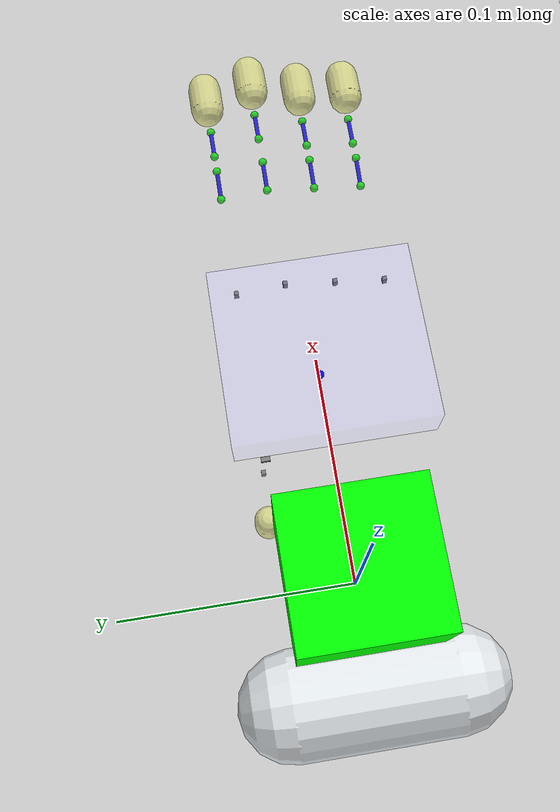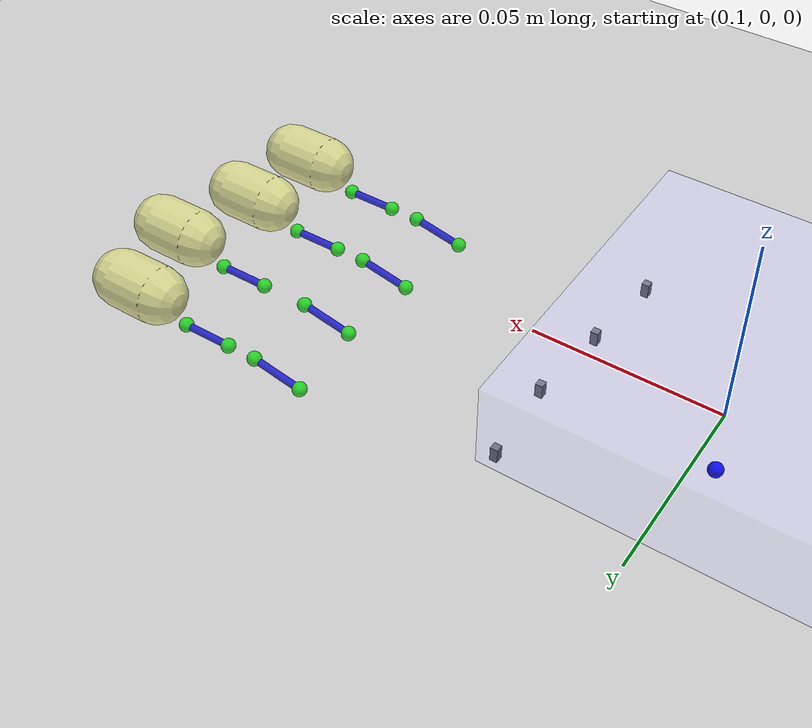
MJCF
<?xml version='1.0' encoding='UTF-8'?>
<mujoco model="ParaHand_only">
    <compiler angle="radian"/>
    <option integrator="implicitfast" gravity="0 0 -9.81"/>
    <default>
        <geom condim="4" friction="1.0 0.01 0.001" solref="0.01 1.0" solimp="0.9 0.95 0.001 0.5 2.0" contype="1" conaffinity="1"/>
        <default class="hand">
            <geom type="mesh" density="1250" rgba="0 0 1 0"/>
        </default>
        <default class="visual">
            <geom contype="0" conaffinity="0" group="2" density="1"/>
        </default>
        <default class="tip">
            <geom zaxis="1 0 0" type="capsule" size="0.008 0.006" pos="0.022 0 0" rgba="1 1 .6 1" density="1000"/>
        </default>
        <default class="tac">
            <geom zaxis="1 0 0" type="capsule" size="0.006 0.003" pos="0.026 0.006 0" rgba="0 1 0 0.3" density="1000" friction="1 0.2 0.01"/>
        </default>
        <default class="collision">
            <geom density="1250" rgba="0.7 0.3 0.3 0.5"/>
            <default class="link_1_collision">
                <geom type="box" pos="0.019235 0.00017 0" size="0.013545 0.00875 0.00599"/>
            </default>
            <default class="link_2_collision">
                <geom type="box" pos="-0.0125 0 0" size="0.00341 0.0075 0.0065"/>
            </default>
            <default class="link_3_collision">
                <geom type="box" pos="0.01113 0 0" size="0.003805 0.0075 0.0065"/>
            </default>
        </default>
        <default class="palm_collision">
            <geom density="1500" rgba="0.3 0.3 0.7 0.2"/>
        </default>
        <default class="tendon">
            <tendon width="0.001" rgba="0 0 1 1"/>
            <position ctrllimited="true" forcelimited="true" forcerange="-400 0" ctrlrange="0.0037 0.0285" kp="200"/>
        </default>
        <default class="tendon_site">
            <site size="0.002" rgba="0 1 0 1"/>
        </default>
        <default class="thumb_joint">
            <joint type="hinge" range="0 1.57" limited="true" solreflimit=".001 1" solimplimit="0.97 0.99 0.00001 0.1 2" damping="1"/>
            <position ctrllimited="true" inheritrange="1" kp="10"/>
        </default>
        <default class="swing_joint">
            <joint type="hinge" solreflimit=".001 1" solimplimit="0.97 0.99 0.00001 0.1 2" damping="1" range="-0.26 0.26"/>
            <position ctrllimited="true" inheritrange="1" kp="10"/>
        </default>
        <default class="finger_joint">
            <joint type="hinge" range="0 1.57" limited="true" solreflimit=".001 1" solimplimit="0.97 0.99 0.00001 0.1 2" damping="1"/>
            <position ctrllimited="true" inheritrange="1" kp="10"/>
        </default>
        <default class="passive_finger_joint">
            <joint type="hinge" range="0 1.57" limited="true" solreflimit=".001 1" solimplimit="0.97 0.99 0.00001 0.1 2" damping="0.001" stiffness="0.005"/>
        </default>
        <default class="touch_sensor">
            <site rgba="1 0 0 0.3" zaxis="1 0 0" size="0.006" pos="0.029 0.006 0"/>
        </default>
        <default class="palm_translation">
            <joint type="slide" solreflimit=".001 1" solimplimit="0.97 0.99 0.00001 0.1 2" damping="1"/>
            <position ctrllimited="true" inheritrange="1" kp="600" kv="40" forcerange="-200 200"/>
        </default>
        <default class="palm_rotation">
            <joint type="hinge" solreflimit=".001 1" solimplimit="0.97 0.99 0.00001 0.1 2" damping="1" limited="true" range="-1.57 1.57"/>
            <position ctrllimited="true" inheritrange="1" kp="60" kv="4" forcerange="-80 80"/>
        </default>
        <default class="cube">
            <geom friction="1.0 0.002 0.002" contype="2097152" conaffinity="2097151" condim="4" />
        </default>
    </default>
    <asset>
        <texture type="2d" name="groundplane" builtin="checker" mark="edge" rgb1="1 1 1" rgb2="0 0 0" markrgb="0 0 0" width="300" height="300"/>
        <material name="groundplane" texture="groundplane" texuniform="true" texrepeat="5 5" reflectance="0"/>
    </asset>
    <keyframe>
		<key name="home"
			qpos="-0.2 0 0.35 0 0 0
				0 0 -0.5 0.63
				0 0.36 0.48 0.32
				0 0.36 0.48 0.32
				0 0.36 0.48 0.32
				0 0.36 0.48 0.32
				0 0 0.03 1 0 0 0"
            qvel="0 0 0 0 0 0
                0 0 0 0
                0 0 0 0
                0 0 0 0
                0 0 0 0
                0 0 0 0
                0 0 0 0 0 0"
			ctrl="-0.2 0 0.35 0 0 0
				0 0 0.23 0.63
				0 0.36 0.021
				0 0.36 0.021
				0 0.36 0.021
				0 0.36 0.021" />
        <key name="follow_object"
            qpos="-0.12 -0.005 0.168 0.23 0 0
                0 0.22 0.23 0.63
                0 0.7 0.47 0.36
                0 0.7 0.47 0.36
                0 0.7 0.47 0.36
                0 0.7 0.47 0.36
                0 0 0.03 1 0 0 0"
            qvel="0 0 0 0 0 0
                0 0 0 0
                0 0 0 0
                0 0 0 0
                0 0 0 0
                0 0 0 0
                0 0 0 0 0 0"
            ctrl="-0.12 -0.005 0.168 0.23 0 0
                0 0.22 0.23 0.63
                0 0.7 0.021
                0 0.7 0.021
                0 0.7 0.021
                0 0.7 0.021"
            />
    </keyframe>
    <worldbody>
        <geom name="floor" pos="0 0 0" size="0 0 0.01" type="plane" material="groundplane" contype="1" conaffinity="2" friction="1 0.05 0.05" solref="0.001 1" solimp="0.98 0.99 0.001"/>
        <body name="palm" pos="0 0 0" euler="3.14 1.57 -1.57" childclass="hand">
            <site name="wrist_origin" size="0.002" rgba="1 0 0 1"/>
            <site name="inner_palm_5" pos="-0.00249 -0.021 0.1" size="0.002" rgba="0 0 1 1"/>
            <geom pos="0 0 -0.044" zaxis="1 0 0" rgba="0.89804 0.91765 0.92941 1" type="capsule" size="0.0225 0.0335" contype="262144" conaffinity="2097343"/>
            <geom name="palm_collision_1" type="box" pos="-0.00249 0.00075 0.1" size="0.045 0.02175 0.04" class="palm_collision" contype="262144" conaffinity="2097343"/>
            <joint name="palm_translation_x" axis="0 0 1" class="palm_translation" range="-0.5 0.5"/>
            <joint name="palm_translation_y" axis="1 0 0" class="palm_translation" range="-0.5 0.5"/>
            <joint name="palm_translation_z" axis="0 1 0" class="palm_translation" range="-0.5 1"/>
            <joint name="palm_rotation_x" axis="1 0 0" class="palm_rotation" range="-0.5 0.5"/>
            <joint name="palm_rotation_y" axis="0 1 0" class="palm_rotation"/>
            <joint name="palm_rotation_z" axis="0 0 1" class="palm_rotation" range="-2 2"/>
            <body name="thumb_mc_1" pos="0.01905 0 0.05851" euler="3.14 1.57 0">
                <joint name="thumb_cmc_1" type="hinge" axis="0 1 0" class="thumb_joint" range="0 0.785"/>
                <geom type="box" pos="0 0 0.01" size="0.001 0.001 0.002" class="visual"/>
                <body name="thumb_mc_2" pos="0 0.01489 0.011500" euler="-1.57 0 0">
                    <joint name="thumb_cmc_2" type="hinge" axis="-1 0 0" class="thumb_joint" range="-1.57 0.785"/>
                    <geom type="box" pos="0 0 0.01" size="0.001 0.001 0.002" class="visual"/>
                    <body name="thumb_pp" pos="0 0 0.022500" euler="-1.57 0 -1.57">
                        <joint name="thumb_mcp" type="hinge" axis="0 0 1" class="thumb_joint" range="-0.611 1.57"/>
                        <geom name="thumb_link_2_collision" type="box" pos="0.0225 0 0.00075" size="0.013795 0.00471 0.00485" class="collision" contype="524288" conaffinity="2343167"/>
                        <body name="thumb_dp" pos="0.04970 0 0" euler="0 0 -3.14">
                            <joint name="thumb_ip" type="hinge" axis="0 0 1" class="thumb_joint"/>
                            <geom name="thumb_link_3_collision" type="box" pos="-0.0227 0 0" size="0.014 0.005 0.006" class="collision" contype="1048576" conaffinity="2357503"/>
                            <geom name="thumb_tip" pos="-0.0442 0.003 0" class="tip" contype="1048576" conaffinity="2357503"/>
                            <site name="thumb_tip" pos="-0.0502 -0.003 0" class="touch_sensor"/>
                            <geom name="thumb_tac" pos="-0.0472 -0.003 0" class="tac" contype="1048576" conaffinity="2357503"/>
                        </body>
                    </body>
                </body>
            </body>
            <body name="index_mc" pos="0.03040 0 0.14156" euler="1.57 0 3.14">
                <joint name="index_mcp_1" axis="0 0 1." class="swing_joint" range="-0.52 0.0"/>
                <geom type="box" pos="0 0 0.01" size="0.001 0.001 0.002" class="visual"/>
                <body name="index_pp" pos="0 -0.0225000 0.014000" euler="1.57 -1.57 0">
                    <joint name="index_mcp_2" axis="0 0 1" class="finger_joint"/>
                    <site name="index_tendon_pip_1" pos="0.0345 0.008 0.0" class="tendon_site"/>
                    <geom name="index_link_1_collision" class="link_1_collision" contype="2048" conaffinity="3285181"/>
                    <body name="index_mp" pos="0.04166 -0.00102 0" euler="-3.14 0 -3.14">
                        <inertial pos="0 0 0" mass="0.005" fullinertia="1.89e-7 9.93e-7 9.81e-7 7.1e-8 0 0"/>
                        <joint name="index_pip" axis="0 0 -1" class="passive_finger_joint"/>
                        <site name="index_tendon_pip_2" pos="-0.007 0.006 0.0" class="tendon_site"/>
                        <site name="index_tendon_dip_1" pos="-0.0155 0.006 0.0" class="tendon_site"/>
                        <geom name="index_link_2_collision" class="link_2_collision" contype="2048" conaffinity="3285181"/>
                        <body name="index_dp" pos="-0.0225 0 0" euler="-3.14 0 3.14">
                            <inertial pos="0 0 0" mass="0.005" fullinertia="1.93e-7 1.736e-6 1.707e-6 -1.9e-7 0 0"/>
                            <joint name="index_dip" axis="0 0 1" class="passive_finger_joint"/>
                            <site name="index_tendon_dip_2" pos="0.007 0.006 0.0" class="tendon_site"/>
                            <geom name="index_link_3_collision" class="link_3_collision" contype="32768" conaffinity="3875005"/>
                            <geom name="index_tip" class="tip" contype="32768" conaffinity="3875005"/>
                            <site name="index_tip" class="touch_sensor"/>
                            <geom name="index_tac" class="tac" contype="32768" conaffinity="3875005"/>
                        </body>
                    </body>
                </body>
            </body>
            <body name="middle_mc" pos="0.00710 0 0.14306" euler="1.57 0 3.14">
                <joint name="middle_mcp_1" axis="0 0 1" class="swing_joint"/>
                <geom type="box" pos="0 0 0.01" size="0.001 0.001 0.002" class="visual"/>
                <body name="middle_pp" pos="0 -0.0225000 0.014000" euler="1.57 -1.57 0">
                    <joint name="middle_mcp_2" axis="0 0 1" class="finger_joint"/>
                    <site name="middle_tendon_pip_1" pos="0.0345 0.008 0.0" class="tendon_site"/>
                    <geom name="middle_link_1_collision" class="link_1_collision" contype="8192" conaffinity="3250365"/>
                    <body name="middle_mp" pos="0.04166 -0.00102 0" euler="-3.14 0 -3.14">
                        <inertial pos="0 0 0" mass="0.005" fullinertia="1.89e-7 9.93e-7 9.81e-7 7.1e-8 0 0"/>
                        <joint name="middle_pip" axis="0 0 -1" class="passive_finger_joint"/>
                        <site name="middle_tendon_pip_2" pos="-0.007 0.006 0.0" class="tendon_site"/>
                        <site name="middle_tendon_dip_1" pos="-0.0205 0.006 0.0" class="tendon_site"/>
                        <geom name="middle_link_2_collision" class="link_2_collision" pos="-0.01388 0 0" size="0.00591 0.0075 0.0065" contype="2048" conaffinity="3285181"/>
                        <body name="middle_dp" pos="-0.0275 0 0" euler="-3.14 0 3.14">
                            <inertial pos="0 0 0" mass="0.005" fullinertia="1.93e-7 1.736e-6 1.707e-6 -1.9e-7 0 0"/>
                            <joint name="middle_dip" axis="0 0 1" class="passive_finger_joint"/>
                            <site name="middle_tendon_dip_2" pos="0.007 0.006 0.0" class="tendon_site"/>
                            <geom name="middle_link_3_collision" class="link_3_collision" contype="131072" conaffinity="3791037"/>
                            <geom name="middle_tip" class="tip" contype="131072" conaffinity="3791037"/>
                            <site name="middle_tip" class="touch_sensor"/>
                            <geom name="middle_tac" class="tac" contype="131072" conaffinity="3791037"/>
                        </body>
                    </body>
                </body>
            </body>
            <body name="ring_mc" pos="-0.0162 0 0.14056" euler="1.57 0 3.14">
                <joint name="ring_mcp_1" axis="0 0 1" class="swing_joint"/>
                <geom type="box" pos="0 0 0.01" size="0.001 0.001 0.002" class="visual"/>
                <body name="ring_pp" pos="0 -0.0225000 0.014000" euler="1.57 -1.57 0">
                    <joint name="ring_mcp_2" axis="0 0 1" class="finger_joint"/>
                    <site name="ring_tendon_pip_1" pos="0.0345 0.008 0.0" class="tendon_site"/>
                    <geom name="ring_link_1_collision" class="link_1_collision" contype="4096" conaffinity="3302589"/>
                    <body name="ring_mp" pos="0.04166 -0.00102 0" euler="-3.14 0 -3.14">
                        <inertial pos="0 0 0" mass="0.005" fullinertia="1.89e-7 9.93e-7 9.81e-7 7.1e-8 0 0"/>
                        <joint name="ring_pip" axis="0 0 -1" class="passive_finger_joint"/>
                        <site name="ring_tendon_pip_2" pos="-0.007 0.006 0.0" class="tendon_site"/>
                        <site name="ring_tendon_dip_1" pos="-0.0155 0.006 0.0" class="tendon_site"/>
                        <geom name="ring_link_2_collision" class="link_2_collision" contype="4096" conaffinity="3302589"/>
                        <body name="ring_dp" pos="-0.0225 0 0" euler="-3.14 0 3.14">
                            <inertial pos="0 0 0" mass="0.005" fullinertia="1.93e-7 1.736e-6 1.707e-6 -1.9e-7 0 0"/>
                            <joint name="ring_dip" axis="0 0 1" class="passive_finger_joint"/>
                            <site name="ring_tendon_dip_2" pos="0.007 0.006 0.0" class="tendon_site"/>
                            <geom name="ring_link_3_collision" class="link_3_collision" contype="65536" conaffinity="3859645"/>
                            <geom name="ring_tip" class="tip" contype="65536" conaffinity="3859645"/>
                            <site name="ring_tip" class="touch_sensor"/>
                            <geom name="ring_tac" class="tac" contype="65536" conaffinity="3859645"/>
                        </body>
                    </body>
                </body>
            </body>
            <body name="little_mc" pos="-0.0393 0 0.13806" euler="1.57 0 3.14">
                <joint name="little_mcp_1" axis="0 0 1" class="swing_joint" range="-0.0 0.52"/>
                <geom type="box" pos="0 0 0.01" size="0.001 0.001 0.002" class="visual"/>
                <body name="little_pp" pos="0 -0.0225000 0.014000" euler="1.57 -1.57 0">
                    <joint name="little_mcp_2" axis="0 0 1" class="finger_joint"/>
                    <site name="little_tendon_pip_1" pos="0.0345 0.008 0.0" class="tendon_site"/>
                    <geom name="little_link_1_collision" class="link_1_collision" contype="1024" conaffinity="2166973"/>
                    <body name="little_mp" pos="0.04166 -0.00102 0" euler="-3.14 0 -3.14">
                        <inertial pos="0 0 0" mass="0.005" fullinertia="1.89e-7 9.93e-7 9.81e-7 7.1e-8 0 0"/>
                        <joint name="little_pip" axis="0 0 -1" class="passive_finger_joint"/>
                        <site name="little_tendon_pip_2" pos="-0.007 0.006 0.0" class="tendon_site"/>
                        <site name="little_tendon_dip_1" pos="-0.0155 0.006 0.0" class="tendon_site"/>
                        <geom name="little_link_2_collision" class="link_2_collision" contype="1024" conaffinity="2166973"/>
                        <body name="little_dp" pos="-0.0225 0 0" euler="-3.14 0 3.14">
                            <inertial pos="0 0 0" mass="0.005" fullinertia="1.93e-7 1.736e-6 1.707e-6 -1.9e-7 0 0"/>
                            <joint name="little_dip" axis="0 0 1" class="passive_finger_joint"/>
                            <site name="little_tendon_dip_2" pos="0.007 0.006 0.0" class="tendon_site"/>
                            <geom name="little_link_3_collision" class="link_3_collision" contype="16384" conaffinity="3870909"/>
                            <geom name="little_tip" class="tip" contype="16384" conaffinity="3870909"/>
                            <site name="little_tip" class="touch_sensor"/>
                            <geom name="little_tac" class="tac" contype="16384" conaffinity="3870909"/>
                        </body>
                    </body>
                </body>
            </body>
        </body>
        <body name="cube" pos="0.0 0.0 0.03" quat="0 0 0 1" childclass="cube">
            <freejoint name="cube_freejoint"/>
            <geom name="cube" type="box" size="0.03 0.03 0.03" rgba="0 1 0 1" density="500"/>
            <site name="cube_center" pos="0 0 0" group="4"/>
        </body>
    </worldbody>
    <contact>
        <!-- Prevent palm self-collision with the proximal finger links. -->
        <exclude body1="palm" body2="thumb_mc_2"/>
        <exclude body1="thumb_mc_2" body2="thumb_pp"/>
        <exclude body1="thumb_pp" body2="thumb_dp"/>
        <exclude body1="palm" body2="index_pp"/>
        <exclude body1="index_pp" body2="index_mp"/>
        <exclude body1="index_mp" body2="index_dp"/>
        <exclude body1="palm" body2="middle_pp"/>
        <exclude body1="middle_pp" body2="middle_mp"/>
        <exclude body1="middle_mp" body2="middle_dp"/>
        <exclude body1="palm" body2="ring_pp"/>
        <exclude body1="ring_pp" body2="ring_mp"/>
        <exclude body1="ring_mp" body2="ring_dp"/>
        <exclude body1="palm" body2="little_pp"/>
        <exclude body1="little_pp" body2="little_mp"/>
        <exclude body1="little_mp" body2="little_dp"/>
    </contact>
    <tendon>
        <spatial name="index_tendon" width="0.001" rgba="0 0 1 1">
            <site site="index_tendon_pip_1"/>
            <site site="index_tendon_pip_2"/>
            <pulley divisor="1"/>
            <site site="index_tendon_dip_1"/>
            <site site="index_tendon_dip_2"/>
        </spatial>
        <spatial name="middle_tendon" width="0.001" rgba="0 0 1 1">
            <site site="middle_tendon_pip_1"/>
            <site site="middle_tendon_pip_2"/>
            <pulley divisor="1"/>
            <site site="middle_tendon_dip_1"/>
            <site site="middle_tendon_dip_2"/>
        </spatial>
        <spatial name="ring_tendon" width="0.001" rgba="0 0 1 1">
            <site site="ring_tendon_pip_1"/>
            <site site="ring_tendon_pip_2"/>
            <pulley divisor="1"/>
            <site site="ring_tendon_dip_1"/>
            <site site="ring_tendon_dip_2"/>
        </spatial>
        <spatial name="little_tendon" width="0.001" rgba="0 0 1 1">
            <site site="little_tendon_pip_1"/>
            <site site="little_tendon_pip_2"/>
            <pulley divisor="1"/>
            <site site="little_tendon_dip_1"/>
            <site site="little_tendon_dip_2"/>
        </spatial>
    </tendon>
    <actuator>
        <position class="palm_translation" name="palm_translation_x" joint="palm_translation_x"/>
        <position class="palm_translation" name="palm_translation_y" joint="palm_translation_y"/>
        <position class="palm_translation" name="palm_translation_z" joint="palm_translation_z"/>
        <position class="palm_rotation" name="palm_rotation_x" joint="palm_rotation_x"/>
        <position class="palm_rotation" name="palm_rotation_y" joint="palm_rotation_y"/>
        <position class="palm_rotation" name="palm_rotation_z" joint="palm_rotation_z"/>
        <position class="thumb_joint" name="thumb_cmc_1" joint="thumb_cmc_1"/>
        <position class="thumb_joint" name="thumb_cmc_2" joint="thumb_cmc_2"/>
        <position class="thumb_joint" name="thumb_mcp" joint="thumb_mcp"/>
        <position class="thumb_joint" name="thumb_ip" joint="thumb_ip"/>
        <position class="swing_joint" name="index_mcp_1" joint="index_mcp_1"/>
        <position class="finger_joint" name="index_mcp_2" joint="index_mcp_2"/>
        <position name="index_tendon" tendon="index_tendon" class="tendon"/>
        <position class="swing_joint" name="middle_mcp_1" joint="middle_mcp_1"/>
        <position class="finger_joint" name="middle_mcp_2" joint="middle_mcp_2"/>
        <position name="middle_tendon" tendon="middle_tendon" class="tendon"/>
        <position class="swing_joint" name="ring_mcp_1" joint="ring_mcp_1"/>
        <position class="finger_joint" name="ring_mcp_2" joint="ring_mcp_2"/>
        <position name="ring_tendon" tendon="ring_tendon" class="tendon"/>
        <position class="swing_joint" name="little_mcp_1" joint="little_mcp_1"/>
        <position class="finger_joint" name="little_mcp_2" joint="little_mcp_2"/>
        <position name="little_tendon" tendon="little_tendon" class="tendon"/>
    </actuator>
    <sensor>
        <framepos name="palm_pos" objtype="site" objname="inner_palm_5"/>
        <framequat name="palm_quat" objtype="body" objname="palm"/>
        <framepos name="thumb_fingertip_pos" objtype="site" objname="thumb_tip"/>
        <framepos name="index_fingertip_pos" objtype="site" objname="index_tip"/>
        <framepos name="middle_fingertip_pos" objtype="site" objname="middle_tip"/>
        <framepos name="ring_fingertip_pos" objtype="site" objname="ring_tip"/>
        <framepos name="little_fingertip_pos" objtype="site" objname="little_tip"/>
        <framequat name="thumb_fingertip_quat" objtype="body" objname="thumb_dp"/>
        <framequat name="index_fingertip_quat" objtype="body" objname="index_dp"/>
        <framequat name="middle_fingertip_quat" objtype="body" objname="middle_dp"/>
        <framequat name="ring_fingertip_quat" objtype="body" objname="ring_dp"/>
        <framequat name="little_fingertip_quat" objtype="body" objname="little_dp"/>
        <touch name="thumb_touch" site="thumb_tip"/>
        <touch name="index_touch" site="index_tip"/>
        <touch name="middle_touch" site="middle_tip"/>
        <touch name="ring_touch" site="ring_tip"/>
        <touch name="little_touch" site="little_tip"/>
    </sensor>
</mujoco>
